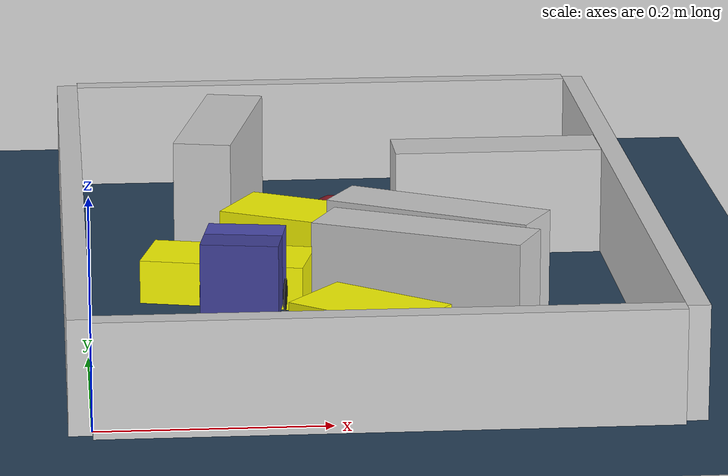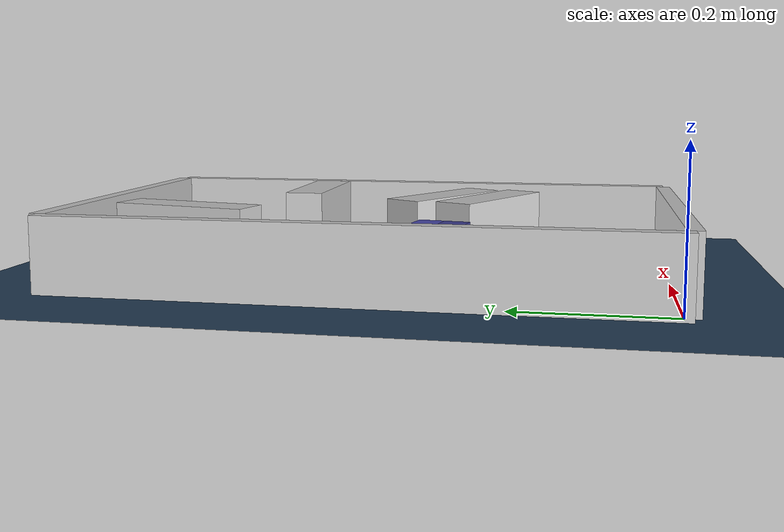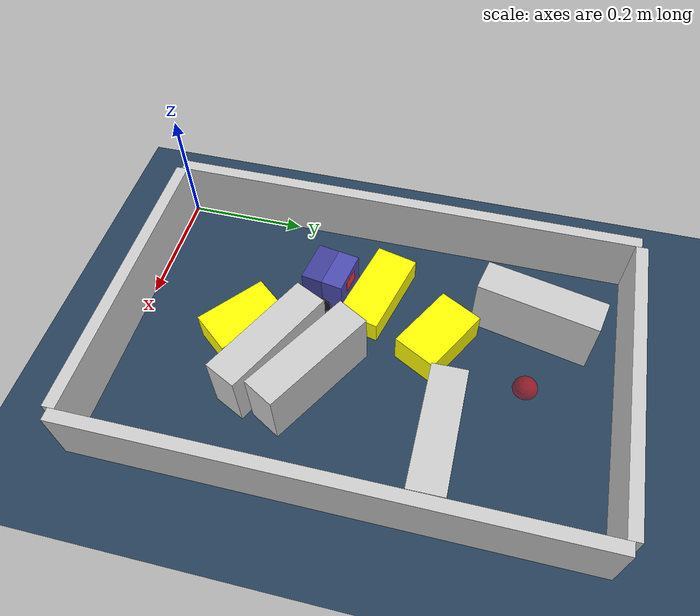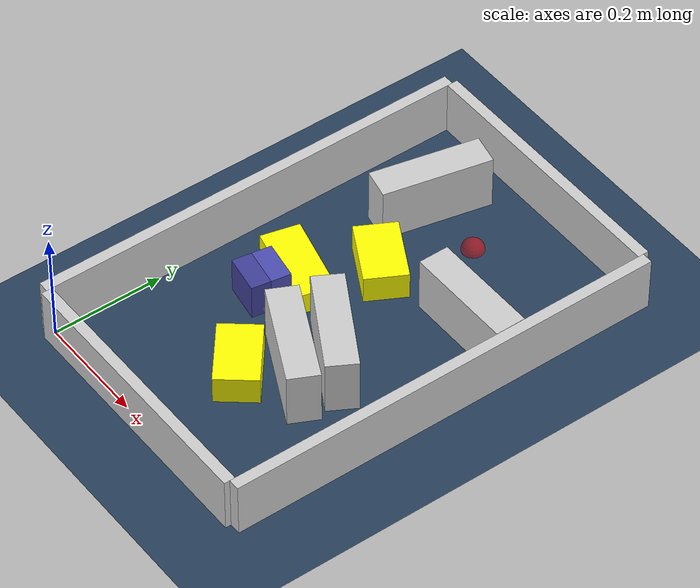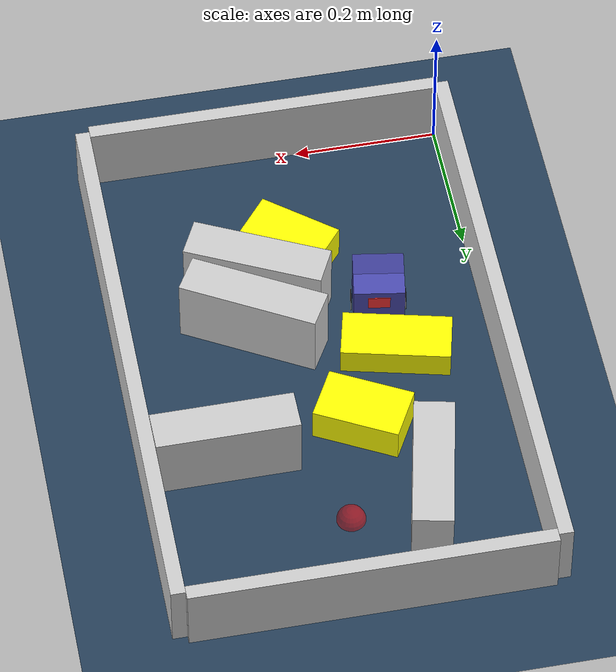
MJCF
<?xml version='1.0' encoding='utf-8'?>
<mujoco model="real_buildable">
  <compiler angle="degree" />
  <option timestep="0.002" integrator="implicitfast" iterations="100" cone="elliptic" />
  <default>
    <geom density="1" />
  </default>
  <asset>
    <texture builtin="gradient" height="3072" rgb1="0.3 0.5 0.7" rgb2="0 0 0" type="skybox" width="512" />
    <texture builtin="checker" height="300" mark="edge" markrgb="0.8 0.8 0.8" name="groundplane" rgb1="0.2 0.3 0.4" rgb2="0.1 0.2 0.3" type="2d" width="300" />
    <material name="groundplane" reflectance="0.2" texrepeat="5 5" texture="groundplane" texuniform="true" />
  </asset>
  <worldbody>
    <light dir="0 0 -1" directional="true" pos="0 0 1.5" />
    <geom name="floor" type="plane" condim="4" friction="0.5 0.005 0.001" material="groundplane" size="0 0 0.05" />
    <body name="walls">
      <geom name="wall_boundary_left" type="box" condim="4" friction="1.0 0.005 0.0001" rgba="0.8 0.8 0.8 1" pos="-0.010000 0.387500 0.050000" euler="0 0 0.000000" size="0.010000 0.397500 0.050000" />
      <geom name="wall_boundary_right" type="box" condim="4" friction="1.0 0.005 0.0001" rgba="0.8 0.8 0.8 1" pos="0.500000 0.387500 0.050000" euler="0 0 0.000000" size="0.010000 0.397500 0.050000" />
      <geom name="wall_boundary_bottom" type="box" condim="4" friction="1.0 0.005 0.0001" rgba="0.8 0.8 0.8 1" pos="0.245000 -0.010000 0.050000" euler="0 0 0.000000" size="0.245000 0.010000 0.050000" />
      <geom name="wall_boundary_top" type="box" condim="4" friction="1.0 0.005 0.0001" rgba="0.8 0.8 0.8 1" pos="0.245000 0.785000 0.050000" euler="0 0 0.000000" size="0.245000 0.010000 0.050000" />
      <geom name="wall_inner_1" type="box" condim="4" friction="1.0 0.005 0.0001" rgba="0.8 0.8 0.8 1" pos="0.316269 0.312636 0.050000" euler="0 0 150.300144" size="0.097500 0.027500 0.050000" />
      <geom name="wall_inner_2" type="box" condim="4" friction="1.0 0.005 0.0001" rgba="0.8 0.8 0.8 1" pos="0.298748 0.245062 0.050000" euler="0 0 153.892613" size="0.097500 0.027500 0.050000" />
      <geom name="wall_inner_3" type="box" condim="4" friction="1.0 0.005 0.0001" rgba="0.8 0.8 0.8 1" pos="0.392000 0.521000 0.050000" euler="0 0 0.300000" size="0.097500 0.027500 0.050000" />
      <geom name="wall_inner_4" type="box" condim="4" friction="1.0 0.005 0.0001" rgba="0.8 0.8 0.8 1" pos="0.135000 0.638000 0.050000" euler="0 0 77.800000" size="0.097500 0.027500 0.050000" />
    </body>
    <body name="car" pos="0.14063830532096061 0.29898264388396406 0.01" quat="0.76194222822036006 0 0 0.64764499600830139">
      <freejoint name="car_freejoint" />
      <inertial pos="0 0 0.0375" mass="0.35" diaginertia="0.000266 0.000266 0.000286" />
      <geom name="front_chassis_collision" type="box" pos="0.0175 0 0.0375" size="0.0175 0.035 0.0325" rgba="0.3 0.3 0.7 1" />
      <geom name="rear_chassis_collision" type="box" pos="-0.0175 0 0.0375" size="0.0175 0.035 0.0325" rgba="0.25 0.25 0.6 1" />
      <geom name="front_marker" type="box" pos="0.034 0 0.0505" size="0.002 0.015 0.01" rgba="1 0.2 0.2 1" contype="0" conaffinity="0" />
      <body name="rear_support_body" pos="-0.03 0 0.0025">
        <joint name="rear_caster_joint" type="ball" damping="0.0001" />
        <inertial pos="0 0 0" mass="0.025" diaginertia="0.000001 0.000001 0.000001" />
        <geom name="rear_support" type="sphere" pos="0 0 0" size="0.0025" friction="0 0 0" rgba="0.7 0.1 0.1 1" />
      </body>
      <body name="front_support_body" pos="0.03 0 0.0025">
        <joint name="front_caster_joint" type="ball" damping="0.0001" />
        <inertial pos="0 0 0" mass="0.025" diaginertia="0.000001 0.000001 0.000001" />
        <geom name="front_support" type="sphere" pos="0 0 0" size="0.0025" friction="0 0 0" rgba="0.1 0.7 0.1 1" />
      </body>
      <body name="left_wheel" pos="0 0.0375 0.015">
        <inertial pos="0 0 0" mass="0.05" diaginertia="0.000003 0.000006 0.000003" />
        <joint name="left_wheel_joint" type="hinge" axis="0 1 0" damping="0.01" armature="0.0001" />
        <geom name="left_wheel_collision" type="cylinder" size="0.015 0.0005" euler="90 0 0" rgba="0.1 0.1 0.1 1" />
      </body>
      <body name="right_wheel" pos="0 -0.0375 0.015">
        <inertial pos="0 0 0" mass="0.05" diaginertia="0.000003 0.000006 0.000003" />
        <joint name="right_wheel_joint" type="hinge" axis="0 1 0" damping="0.01" armature="0.0001" />
        <geom name="right_wheel_collision" type="cylinder" size="0.015 0.0005" euler="90 0 0" rgba="0.1 0.1 0.1 1" />
      </body>
    </body>
    <body name="obstacle_0_movable">
      <geom name="obstacle_0_movable" condim="4" pos="0.13072293385070424 0.37645996548587413 0.02" friction="1 0.005 0.0001" rgba="1 1 0 1" size="0.035000 0.075000 0.020000" type="box" mass="0.1" quat="0.7861139582374751 0 0 0.61808158414905812" />
      <joint type="free" />
    </body>
    <body name="obstacle_1_movable">
      <geom name="obstacle_1_movable" condim="4" pos="0.19899999999999979 0.48999999999999938 0.025000000000000001" friction="1 0.005 0.0001" rgba="1 1 0 1" size="0.037500 0.060000 0.025000" type="box" mass="0.1" quat="0.85895989693066443 0 0 0.51204286487057149" />
      <joint type="free" />
    </body>
    <body name="obstacle_2_movable">
      <geom name="obstacle_2_movable" condim="4" pos="0.2440709999999999 0.17987399999999976 0.025000000000000001" friction="1 0.005 0.0001" rgba="1 1 0 1" size="0.037500 0.060000 0.025000" type="box" mass="0.1" quat="0.90145418783879838 0 0 0.4328745167226784" />
      <joint type="free" />
    </body>
    <site name="goal" type="sphere" pos="0.245000 0.640000 0.0" size="0.02" rgba="1 0 0 0.5" />
  </worldbody>
  <actuator>
    <velocity name="left_wheel_drive" joint="left_wheel_joint" ctrlrange="-25 25" kv="0.75" forcerange="-0.5 0.5" />
    <velocity name="right_wheel_drive" joint="right_wheel_joint" ctrlrange="-25 25" kv="0.75" forcerange="-0.5 0.5" />
  </actuator>
</mujoco>
